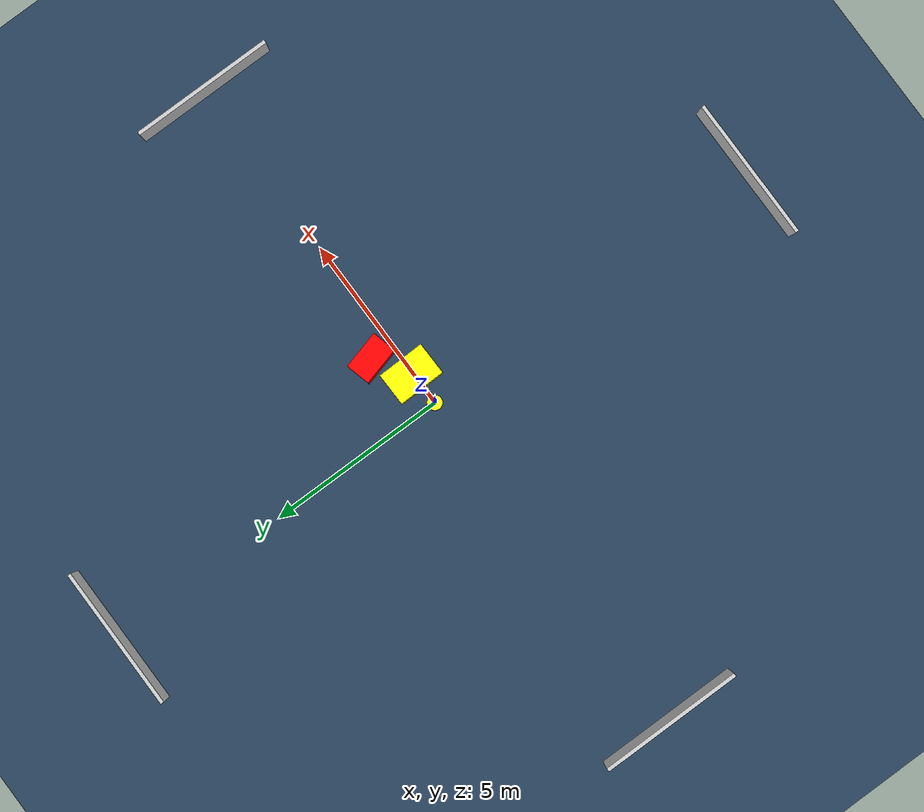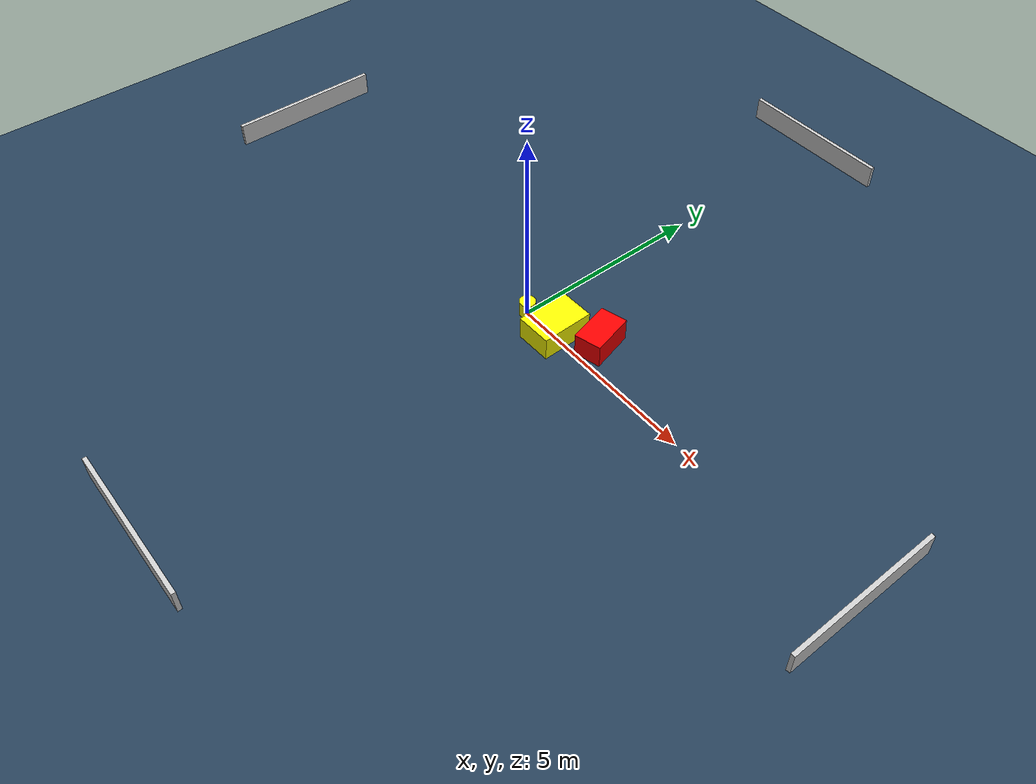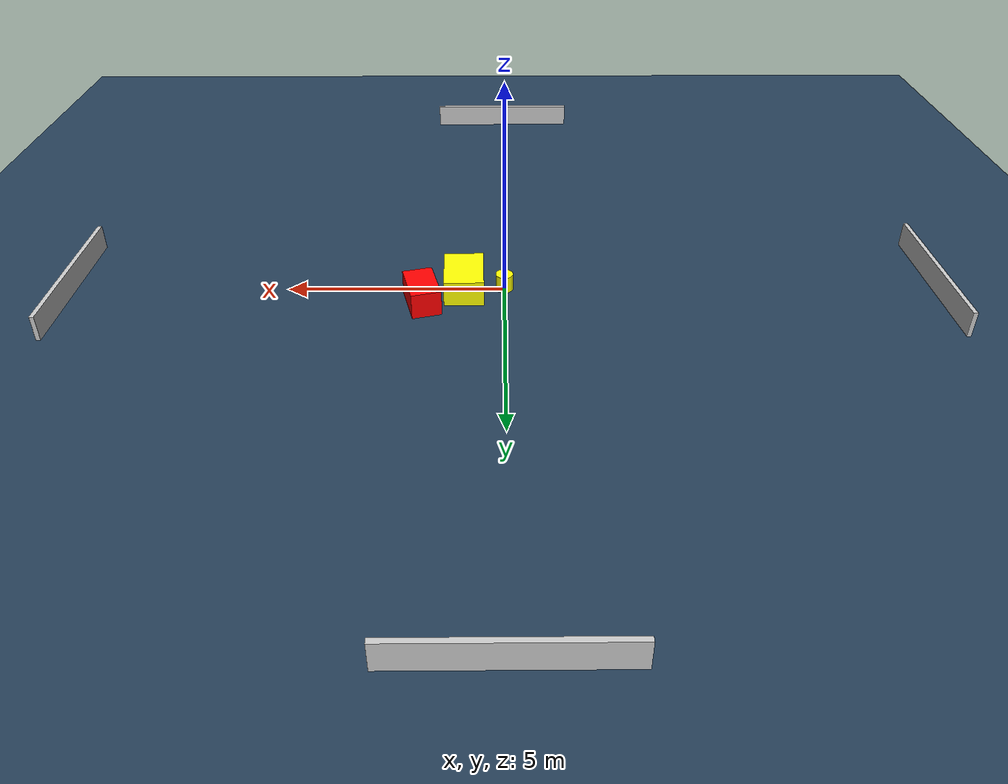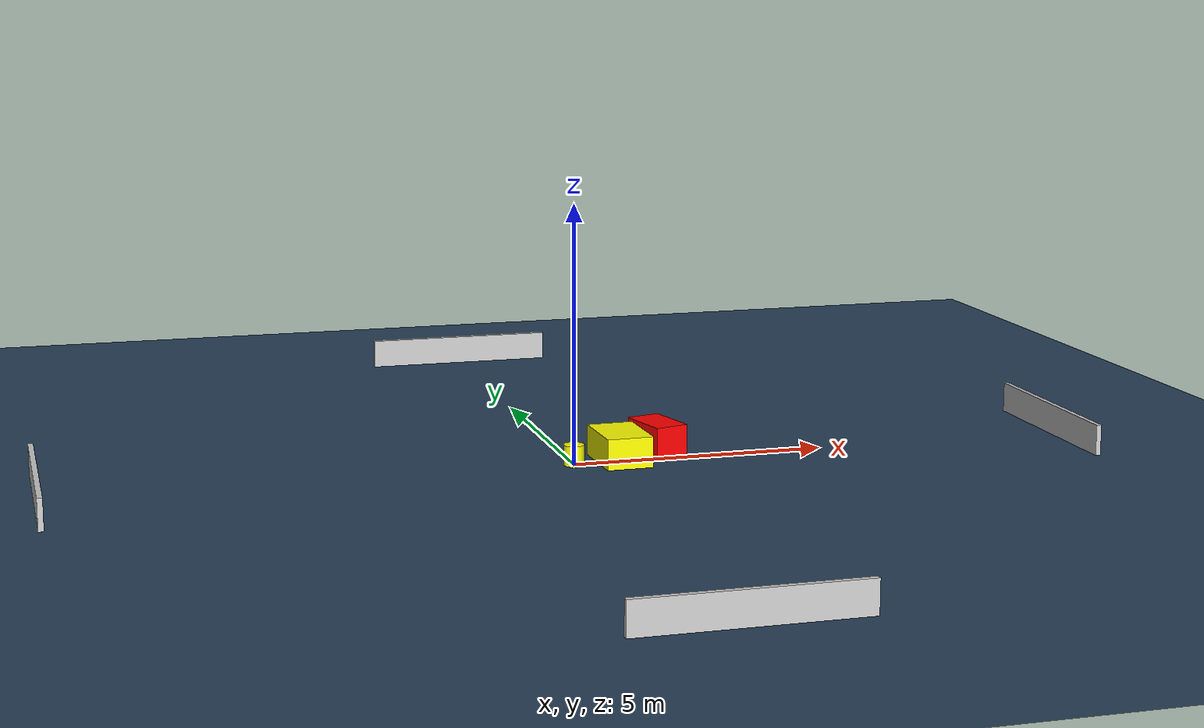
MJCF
<?xml version="1.0" ?>
<mujoco model="generated_environment">
  <option timestep="0.01" integrator="RK4" cone="elliptic"/>
  <default>
    <geom density="1"/>
  </default>
  <asset>
    <texture builtin="gradient" height="3072" name="skybox" rgb1="0.3 0.5 0.7" rgb2="0 0 0" type="skybox" width="512"/>
    <texture builtin="checker" height="300" name="groundplane" rgb1="0.2 0.3 0.4" rgb2="0.1 0.2 0.3" type="2d" width="300"/>
    <material name="groundplane" reflectance="0.2" texrepeat="5 5" texture="groundplane"/>
  </asset>
  <worldbody>
    <light dir="0 0 -1" directional="true" pos="0 0 1.5"/>
    <geom condim="3" friction="0.5 0.005 0.001" material="groundplane" name="floor" pos="0 0 0" size="0 0 0.05" type="plane"/>
    <body name="walls">
      <geom name="wall_1" condim="4" pos="-10.0 0.0 0.3" rgba="0.800000011920929 0.800000011920929 0.800000011920929 1.0" size="0.05 2.0 0.3" type="box"/>
      <geom name="wall_2" condim="4" pos="10.0 0.0 0.3" rgba="0.800000011920929 0.800000011920929 0.800000011920929 1.0" size="0.05 2.0 0.3" type="box"/>
      <geom name="wall_3" condim="4" pos="0.0 -10.0 0.3" rgba="0.800000011920929 0.800000011920929 0.800000011920929 1.0" size="2.0 0.05 0.3" type="box"/>
      <geom name="wall_4" condim="4" pos="0.0 10.0 0.3" rgba="0.800000011920929 0.800000011920929 0.800000011920929 1.0" size="2.0 0.05 0.3" type="box"/>
    </body>
    <body name="robot">
      <joint name="joint_x" type="slide" pos="0 0 0" axis="1 0 0"/>
      <joint name="joint_y" type="slide" pos="0 0 0" axis="0 1 0"/>
      <geom name="robot" type="cylinder" pos="0.0 0.0 0.2" size="0.2 0.2 0.0" mass="5.0" friction="1.0 0.005 0.0001" condim="4" rgba="1.0 1.0 0.0 1.0"/>
    </body>
    <body name="obstacle_1_movable">
      <geom name="obstacle_1_movable" condim="4" pos="0.9339216656958125 0.054609898092958645 0.3" euler="0 0 91.23656009264234" friction="0.0 0.005 0.001" rgba="1.0 1.0 0.0 1.0" size="0.6580076941661464 0.4553438223288715 0.3" type="box" mass="0.1"/>
      <joint type="free"/>
    </body>
    <body name="obstacle_2_static">
      <geom name="obstacle_2_static" condim="4" pos="1.8652132943029718 0.6338033016646625 0.3" euler="0 0 284.72911572739895" friction="0.0 0.005 0.001" rgba="1.0 0.0 0.0 1.0" size="0.5400848345069218 0.34012415745260793 0.3" type="box"/>
    </body>
  </worldbody>
  <actuator>
    <motor name="actuator_x" joint="joint_x" gear="1" ctrlrange="-1 1"/>
    <motor name="actuator_y" joint="joint_y" gear="1" ctrlrange="-1 1"/>
  </actuator>
</mujoco>
